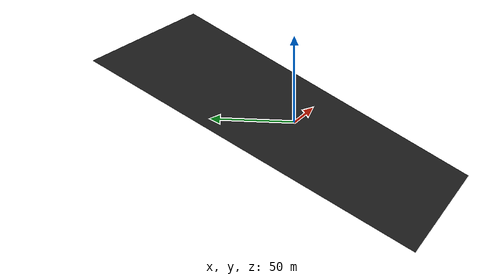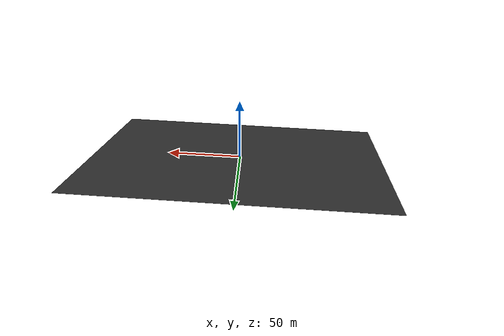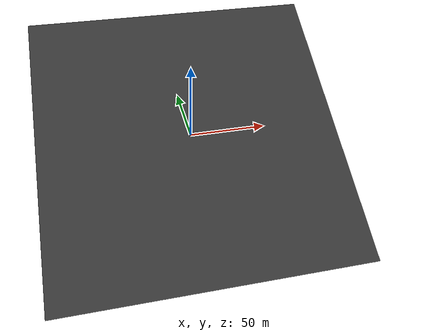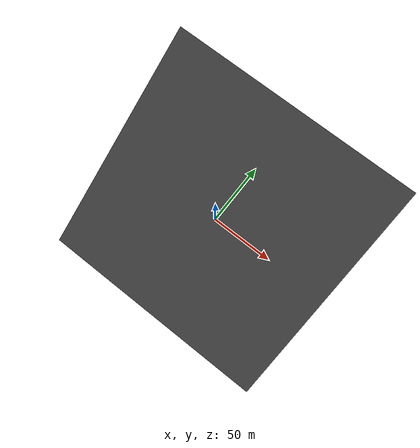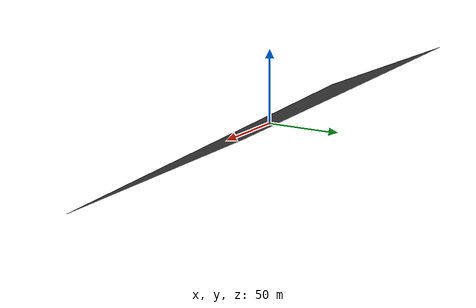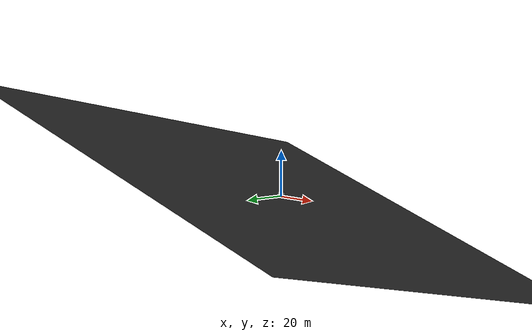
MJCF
<mujoco model='catpole_2'>
    <compiler angle="radian" inertiafromgeom='false' coordinate='local'/>
    <option timestep='0.0002' iterations='100' solver='PGS' gravity='0 0 -9.8' tolerance="1e-15" collision='predefined' integrator='RK4'/>

    <asset>
        <texture type='skybox' builtin='gradient' width='100' height='100' rgb1='0.4 0.6 0.8' rgb2='0 0 0'/>
        <texture type='2d' name='plane' builtin='checker' rgb1='0.2 0.2 0.2' rgb2='0.3 0.3 0.3' width='100' height='100'/>
        <material name='plane' reflectance='0' texture='plane' texrepeat='1 1' texuniform='true'/>
    </asset>

    <worldbody>
        <light directional='true' pos='0 0 3' dir='0 0 -1' diffuse='0 0 0' specular='0 0 0' ambient='1 1 1' castshadow='false'/>
        <geom name='floor' pos='0 0 0' size='100 100 .125' type='plane' material='plane' condim='3' conaffinity='15' euler='0.5 0 0'/>
        <geom name='z' pos='0 0 5' size='0.1 1' type='capsule'/>
        <body pos='0 0 1.14' euler='0.5 0 0'>
            <joint type='free'/>
            <inertial mass='1' pos='0 0 0' fullinertia='0.1 0.1 0.1 0 0 0'/>
            <geom type='box' size='1 1 1' name='bbbb'/>
        </body>
    </worldbody>

    <contact>
        <pair geom1='floor' geom2='bbbb' condim='3' friction='0.7 0.7 0.005' solref='0.002 0.1'/>
    </contact>

</mujoco>
